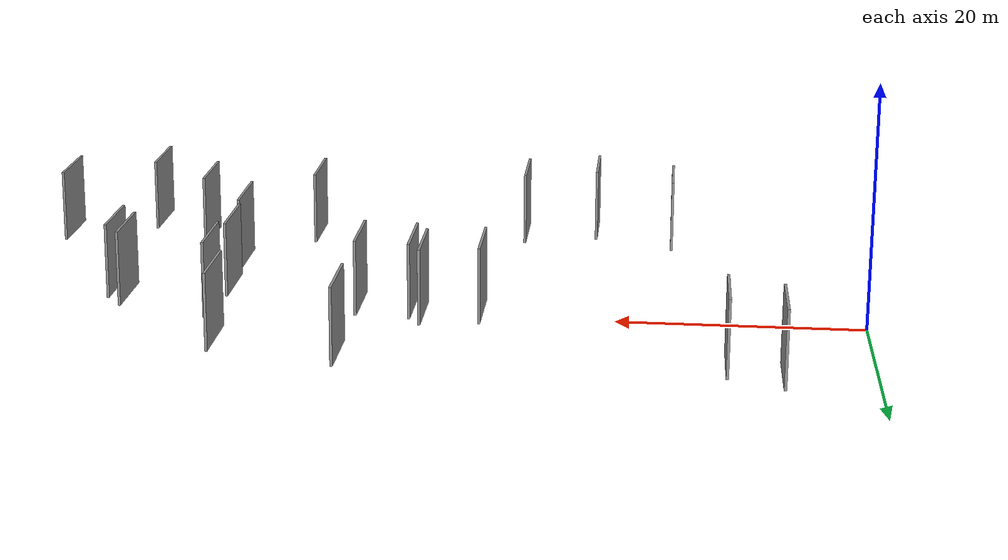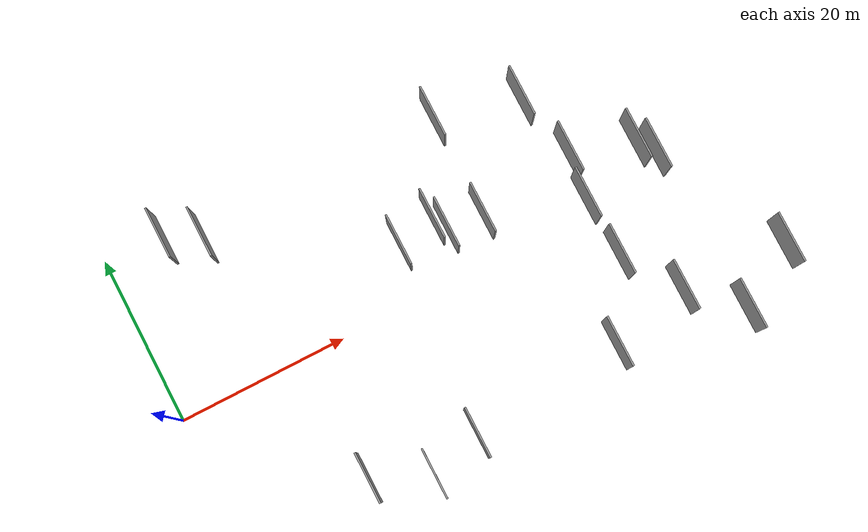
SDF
<sdf version="1.6">
 <world name="default">
  <scene>
   <sky><clouds><speed>12</speed></clouds></sky>
   <ambient>0.4 0.4 0.4 1</ambient>
   <background>0.7 0.7 0.7 1</background>
   <shadows>1</shadows>
  </scene>
  <gravity>0 0 -9.8066</gravity>
  <magnetic_field>6e-06 2.3e-05 -4.2e-05</magnetic_field>
  <physics default="0" name="default_physics" type="ode">
   <ode>
    <solver>
     <type>quick</type>
     <iters>10</iters>
     <sor>1.0</sor>
     <use_dynamic_moi_rescaling>0</use_dynamic_moi_rescaling>
    </solver>
    <constraints>
     <cfm>0</cfm>
     <erp>0.2</erp>
     <contact_max_correcting_vel>100</contact_max_correcting_vel>
     <contact_surface_layer>0.001</contact_surface_layer>
    </constraints>
   </ode>
   <max_step_size>0.004</max_step_size>
   <real_time_factor>1</real_time_factor>
   <real_time_update_rate>250</real_time_update_rate>
  </physics>
  <light name="sun" type="directional">
   <pose>0 0 10 0 0 0</pose>
   <diffuse>0.8 0.8 0.8 1</diffuse>
   <specular>0.2 0.2 0.2 1</specular>
   <attenuation>
    <range>1000</range>
    <constant>0.9</constant>
    <linear>0.01</linear>
    <quadratic>0.001</quadratic>
   </attenuation>
   <direction>-0.5 0.1 -0.9</direction>
  </light>
  <model name="grey_wall_1">
   <static>1</static>
   <pose>60.0736 2.5275 2.5 0.000000 0.000000 1.570796</pose>
   <link name="link">
    <pose>0 0 3.00 0 0 0</pose>
    <collision name="collision"><geometry><box><size>6.00 0.2 6.00</size></box></geometry></collision>
    <visual name="visual">
     <cast_shadows>0</cast_shadows>
     <geometry><box><size>6.00 0.2 6.00</size></box></geometry>
     <material>
      <script>
       <uri>model://grey_wall/materials/scripts</uri>
       <uri>model://grey_wall/materials/textures</uri>
       <name>vrc/grey_wall</name>
      </script>
     </material>
    </visual>
   </link>
  </model>
  <model name="grey_wall_2">
   <static>1</static>
   <pose>28.2302 -16.2975 2.5 0.000000 0.000000 1.570796</pose>
   <link name="link">
    <pose>0 0 3.00 0 0 0</pose>
    <collision name="collision"><geometry><box><size>6.00 0.2 6.00</size></box></geometry></collision>
    <visual name="visual">
     <cast_shadows>0</cast_shadows>
     <geometry><box><size>6.00 0.2 6.00</size></box></geometry>
     <material>
      <script>
       <uri>model://grey_wall/materials/scripts</uri>
       <uri>model://grey_wall/materials/textures</uri>
       <name>vrc/grey_wall</name>
      </script>
     </material>
    </visual>
   </link>
  </model>
  <model name="grey_wall_3">
   <static>1</static>
   <pose>34.6992 6.8848 2.5 0.000000 0.000000 1.570796</pose>
   <link name="link">
    <pose>0 0 3.00 0 0 0</pose>
    <collision name="collision"><geometry><box><size>6.00 0.2 6.00</size></box></geometry></collision>
    <visual name="visual">
     <cast_shadows>0</cast_shadows>
     <geometry><box><size>6.00 0.2 6.00</size></box></geometry>
     <material>
      <script>
       <uri>model://grey_wall/materials/scripts</uri>
       <uri>model://grey_wall/materials/textures</uri>
       <name>vrc/grey_wall</name>
      </script>
     </material>
    </visual>
   </link>
  </model>
  <model name="grey_wall_4">
   <static>1</static>
   <pose>30.1752 5.9931 2.5 0.000000 0.000000 1.570796</pose>
   <link name="link">
    <pose>0 0 3.00 0 0 0</pose>
    <collision name="collision"><geometry><box><size>6.00 0.2 6.00</size></box></geometry></collision>
    <visual name="visual">
     <cast_shadows>0</cast_shadows>
     <geometry><box><size>6.00 0.2 6.00</size></box></geometry>
     <material>
      <script>
       <uri>model://grey_wall/materials/scripts</uri>
       <uri>model://grey_wall/materials/textures</uri>
       <name>vrc/grey_wall</name>
      </script>
     </material>
    </visual>
   </link>
  </model>
  <model name="grey_wall_5">
   <static>1</static>
   <pose>67.8945 -13.1740 2.5 0.000000 0.000000 1.570796</pose>
   <link name="link">
    <pose>0 0 3.00 0 0 0</pose>
    <collision name="collision"><geometry><box><size>6.00 0.2 6.00</size></box></geometry></collision>
    <visual name="visual">
     <cast_shadows>0</cast_shadows>
     <geometry><box><size>6.00 0.2 6.00</size></box></geometry>
     <material>
      <script>
       <uri>model://grey_wall/materials/scripts</uri>
       <uri>model://grey_wall/materials/textures</uri>
       <name>vrc/grey_wall</name>
      </script>
     </material>
    </visual>
   </link>
  </model>
  <model name="grey_wall_6">
   <static>1</static>
   <pose>11.4719 16.6021 2.5 0.000000 0.000000 1.570796</pose>
   <link name="link">
    <pose>0 0 3.00 0 0 0</pose>
    <collision name="collision"><geometry><box><size>6.00 0.2 6.00</size></box></geometry></collision>
    <visual name="visual">
     <cast_shadows>0</cast_shadows>
     <geometry><box><size>6.00 0.2 6.00</size></box></geometry>
     <material>
      <script>
       <uri>model://grey_wall/materials/scripts</uri>
       <uri>model://grey_wall/materials/textures</uri>
       <name>vrc/grey_wall</name>
      </script>
     </material>
    </visual>
   </link>
  </model>
  <model name="grey_wall_7">
   <static>1</static>
   <pose>51.4426 6.5972 2.5 0.000000 0.000000 1.570796</pose>
   <link name="link">
    <pose>0 0 3.00 0 0 0</pose>
    <collision name="collision"><geometry><box><size>6.00 0.2 6.00</size></box></geometry></collision>
    <visual name="visual">
     <cast_shadows>0</cast_shadows>
     <geometry><box><size>6.00 0.2 6.00</size></box></geometry>
     <material>
      <script>
       <uri>model://grey_wall/materials/scripts</uri>
       <uri>model://grey_wall/materials/textures</uri>
       <name>vrc/grey_wall</name>
      </script>
     </material>
    </visual>
   </link>
  </model>
  <model name="grey_wall_8">
   <static>1</static>
   <pose>58.6764 4.4714 2.5 0.000000 0.000000 1.570796</pose>
   <link name="link">
    <pose>0 0 3.00 0 0 0</pose>
    <collision name="collision"><geometry><box><size>6.00 0.2 6.00</size></box></geometry></collision>
    <visual name="visual">
     <cast_shadows>0</cast_shadows>
     <geometry><box><size>6.00 0.2 6.00</size></box></geometry>
     <material>
      <script>
       <uri>model://grey_wall/materials/scripts</uri>
       <uri>model://grey_wall/materials/textures</uri>
       <name>vrc/grey_wall</name>
      </script>
     </material>
    </visual>
   </link>
  </model>
  <model name="grey_wall_9">
   <static>1</static>
   <pose>22.1503 -18.0386 2.5 0.000000 0.000000 1.570796</pose>
   <link name="link">
    <pose>0 0 3.00 0 0 0</pose>
    <collision name="collision"><geometry><box><size>6.00 0.2 6.00</size></box></geometry></collision>
    <visual name="visual">
     <cast_shadows>0</cast_shadows>
     <geometry><box><size>6.00 0.2 6.00</size></box></geometry>
     <material>
      <script>
       <uri>model://grey_wall/materials/scripts</uri>
       <uri>model://grey_wall/materials/textures</uri>
       <name>vrc/grey_wall</name>
      </script>
     </material>
    </visual>
   </link>
  </model>
  <model name="grey_wall_10">
   <static>1</static>
   <pose>60.8233 -17.5623 2.5 0.000000 0.000000 1.570796</pose>
   <link name="link">
    <pose>0 0 3.00 0 0 0</pose>
    <collision name="collision"><geometry><box><size>6.00 0.2 6.00</size></box></geometry></collision>
    <visual name="visual">
     <cast_shadows>0</cast_shadows>
     <geometry><box><size>6.00 0.2 6.00</size></box></geometry>
     <material>
      <script>
       <uri>model://grey_wall/materials/scripts</uri>
       <uri>model://grey_wall/materials/textures</uri>
       <name>vrc/grey_wall</name>
      </script>
     </material>
    </visual>
   </link>
  </model>
  <model name="grey_wall_11">
   <static>1</static>
   <pose>35.6608 5.3588 2.5 0.000000 0.000000 1.570796</pose>
   <link name="link">
    <pose>0 0 3.00 0 0 0</pose>
    <collision name="collision"><geometry><box><size>6.00 0.2 6.00</size></box></geometry></collision>
    <visual name="visual">
     <cast_shadows>0</cast_shadows>
     <geometry><box><size>6.00 0.2 6.00</size></box></geometry>
     <material>
      <script>
       <uri>model://grey_wall/materials/scripts</uri>
       <uri>model://grey_wall/materials/textures</uri>
       <name>vrc/grey_wall</name>
      </script>
     </material>
    </visual>
   </link>
  </model>
  <model name="grey_wall_12">
   <static>1</static>
   <pose>51.1300 -5.9115 2.5 0.000000 0.000000 1.570796</pose>
   <link name="link">
    <pose>0 0 3.00 0 0 0</pose>
    <collision name="collision"><geometry><box><size>6.00 0.2 6.00</size></box></geometry></collision>
    <visual name="visual">
     <cast_shadows>0</cast_shadows>
     <geometry><box><size>6.00 0.2 6.00</size></box></geometry>
     <material>
      <script>
       <uri>model://grey_wall/materials/scripts</uri>
       <uri>model://grey_wall/materials/textures</uri>
       <name>vrc/grey_wall</name>
      </script>
     </material>
    </visual>
   </link>
  </model>
  <model name="grey_wall_13">
   <static>1</static>
   <pose>50.7868 1.2137 2.5 0.000000 0.000000 1.570796</pose>
   <link name="link">
    <pose>0 0 3.00 0 0 0</pose>
    <collision name="collision"><geometry><box><size>6.00 0.2 6.00</size></box></geometry></collision>
    <visual name="visual">
     <cast_shadows>0</cast_shadows>
     <geometry><box><size>6.00 0.2 6.00</size></box></geometry>
     <material>
      <script>
       <uri>model://grey_wall/materials/scripts</uri>
       <uri>model://grey_wall/materials/textures</uri>
       <name>vrc/grey_wall</name>
      </script>
     </material>
    </visual>
   </link>
  </model>
  <model name="grey_wall_14">
   <static>1</static>
   <pose>15.6409 -15.1926 2.5 0.000000 0.000000 1.570796</pose>
   <link name="link">
    <pose>0 0 3.00 0 0 0</pose>
    <collision name="collision"><geometry><box><size>6.00 0.2 6.00</size></box></geometry></collision>
    <visual name="visual">
     <cast_shadows>0</cast_shadows>
     <geometry><box><size>6.00 0.2 6.00</size></box></geometry>
     <material>
      <script>
       <uri>model://grey_wall/materials/scripts</uri>
       <uri>model://grey_wall/materials/textures</uri>
       <name>vrc/grey_wall</name>
      </script>
     </material>
    </visual>
   </link>
  </model>
  <model name="grey_wall_15">
   <static>1</static>
   <pose>46.2174 -14.6597 2.5 0.000000 0.000000 1.570796</pose>
   <link name="link">
    <pose>0 0 3.00 0 0 0</pose>
    <collision name="collision"><geometry><box><size>6.00 0.2 6.00</size></box></geometry></collision>
    <visual name="visual">
     <cast_shadows>0</cast_shadows>
     <geometry><box><size>6.00 0.2 6.00</size></box></geometry>
     <material>
      <script>
       <uri>model://grey_wall/materials/scripts</uri>
       <uri>model://grey_wall/materials/textures</uri>
       <name>vrc/grey_wall</name>
      </script>
     </material>
    </visual>
   </link>
  </model>
  <model name="grey_wall_16">
   <static>1</static>
   <pose>55.4254 -12.5003 2.5 0.000000 0.000000 1.570796</pose>
   <link name="link">
    <pose>0 0 3.00 0 0 0</pose>
    <collision name="collision"><geometry><box><size>6.00 0.2 6.00</size></box></geometry></collision>
    <visual name="visual">
     <cast_shadows>0</cast_shadows>
     <geometry><box><size>6.00 0.2 6.00</size></box></geometry>
     <material>
      <script>
       <uri>model://grey_wall/materials/scripts</uri>
       <uri>model://grey_wall/materials/textures</uri>
       <name>vrc/grey_wall</name>
      </script>
     </material>
    </visual>
   </link>
  </model>
  <model name="grey_wall_17">
   <static>1</static>
   <pose>39.8846 4.9657 2.5 0.000000 0.000000 1.570796</pose>
   <link name="link">
    <pose>0 0 3.00 0 0 0</pose>
    <collision name="collision"><geometry><box><size>6.00 0.2 6.00</size></box></geometry></collision>
    <visual name="visual">
     <cast_shadows>0</cast_shadows>
     <geometry><box><size>6.00 0.2 6.00</size></box></geometry>
     <material>
      <script>
       <uri>model://grey_wall/materials/scripts</uri>
       <uri>model://grey_wall/materials/textures</uri>
       <name>vrc/grey_wall</name>
      </script>
     </material>
    </visual>
   </link>
  </model>
  <model name="grey_wall_18">
   <static>1</static>
   <pose>49.5933 14.4614 2.5 0.000000 0.000000 1.570796</pose>
   <link name="link">
    <pose>0 0 3.00 0 0 0</pose>
    <collision name="collision"><geometry><box><size>6.00 0.2 6.00</size></box></geometry></collision>
    <visual name="visual">
     <cast_shadows>0</cast_shadows>
     <geometry><box><size>6.00 0.2 6.00</size></box></geometry>
     <material>
      <script>
       <uri>model://grey_wall/materials/scripts</uri>
       <uri>model://grey_wall/materials/textures</uri>
       <name>vrc/grey_wall</name>
      </script>
     </material>
    </visual>
   </link>
  </model>
  <model name="grey_wall_19">
   <static>1</static>
   <pose>39.8959 16.8445 2.5 0.000000 0.000000 1.570796</pose>
   <link name="link">
    <pose>0 0 3.00 0 0 0</pose>
    <collision name="collision"><geometry><box><size>6.00 0.2 6.00</size></box></geometry></collision>
    <visual name="visual">
     <cast_shadows>0</cast_shadows>
     <geometry><box><size>6.00 0.2 6.00</size></box></geometry>
     <material>
      <script>
       <uri>model://grey_wall/materials/scripts</uri>
       <uri>model://grey_wall/materials/textures</uri>
       <name>vrc/grey_wall</name>
      </script>
     </material>
    </visual>
   </link>
  </model>
  <model name="grey_wall_20">
   <static>1</static>
   <pose>7.4651 18.5317 2.5 0.000000 0.000000 1.570796</pose>
   <link name="link">
    <pose>0 0 3.00 0 0 0</pose>
    <collision name="collision"><geometry><box><size>6.00 0.2 6.00</size></box></geometry></collision>
    <visual name="visual">
     <cast_shadows>0</cast_shadows>
     <geometry><box><size>6.00 0.2 6.00</size></box></geometry>
     <material>
      <script>
       <uri>model://grey_wall/materials/scripts</uri>
       <uri>model://grey_wall/materials/textures</uri>
       <name>vrc/grey_wall</name>
      </script>
     </material>
    </visual>
   </link>
  </model>
 </world>
</sdf>
